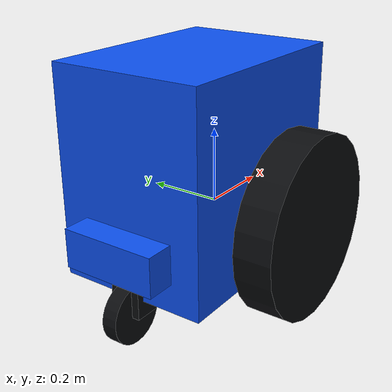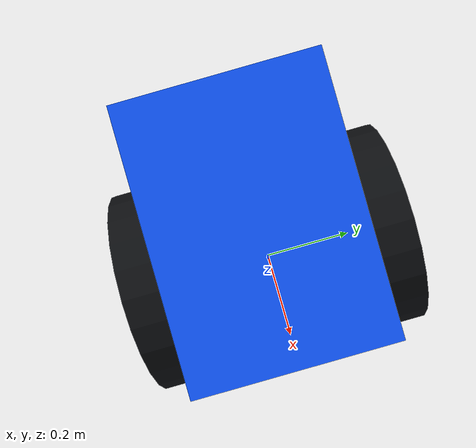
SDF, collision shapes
<sdf version='1.11'>
  <model name='carter'>
    <link name='chassis_link'>
      <inertial>
        <pose>-0.14492629558047901 0 0.1021050290754775 0 0 0</pose>
        <mass>65.97999999999999</mass>
        <inertia>
          <ixx>2.6920995721185479</ixx>
          <ixy>0.017957000000000001</ixy>
          <ixz>-0.53075965212723208</ixz>
          <iyy>2.7387809024579108</iyy>
          <iyz>1.8e-05</iyz>
          <izz>4.0109903303393626</izz>
        </inertia>
      </inertial>
      <collision name='chassis_link_collision'>
        <pose>-0.07764248 0 0.14683718000000001 0 0 0</pose>
        <geometry>
          <box>
            <size>0.55000000000000004 0.40000000000000002 0.54000000000000004</size>
          </box>
        </geometry>
      </collision>
      <collision name='chassis_link_fixed_joint_lump__com_offset_collision_1'>
        <pose>-0.29999999999999999 0 0 0 0 0</pose>
        <geometry>
          <box>
            <size>0.25 0.25 0.10000000000000001</size>
          </box>
        </geometry>
      </collision>
      <visual name='chassis_link_visual'>
        <pose>0 0 0 0 0 0</pose>
        <geometry>
          <mesh>
            <scale>1 1 1</scale>
            <uri>model://carter_description/meshes/chassis.obj</uri>
          </mesh>
        </geometry>
        <material>
          <ambient>0.04 0.24 0.80 1</ambient>
          <diffuse>0.05 0.32 0.95 1</diffuse>
          <specular>0.30 0.30 0.35 1</specular>
        </material>
      </visual>
      <visual name='white_upper_cover'>
        <pose>0.015 0 0.275 0 0 0</pose>
        <geometry>
          <box><size>0.30 0.31 0.10</size></box>
        </geometry>
        <material>
          <ambient>0.92 0.94 0.98 1</ambient>
          <diffuse>0.98 0.99 1.00 1</diffuse>
        </material>
      </visual>
      <sensor name="imu" type="imu">
        <pose>0 0 0.30 0 0 0</pose>
        <always_on>true</always_on>
        <update_rate>100</update_rate>
      </sensor>
      <sensor name="lidar" type="gpu_lidar">
        <pose>0.12 0 0.48 0 0 0</pose>
        <always_on>true</always_on>
        <update_rate>10</update_rate>
        <visualize>true</visualize>
        <lidar>
          <scan>
            <horizontal>
              <samples>720</samples>
              <resolution>1</resolution>
              <min_angle>-3.14159265</min_angle>
              <max_angle>3.14159265</max_angle>
            </horizontal>
          </scan>
          <range>
            <min>0.12</min>
            <max>25.0</max>
            <resolution>0.02</resolution>
          </range>
        </lidar>
      </sensor>
    </link>
    <joint name='left_wheel' type='revolute'>
      <pose relative_to='chassis_link'>0 0.31420516999999998 0 0 0 0</pose>
      <parent>chassis_link</parent>
      <child>left_wheel_link</child>
      <axis>
        <xyz>0 1 0</xyz>
        <limit>
          <lower>-inf</lower>
          <upper>inf</upper>
        </limit>
        <dynamics>
          <spring_reference>0</spring_reference>
          <spring_stiffness>0</spring_stiffness>
        </dynamics>
      </axis>
    </joint>
    <link name='left_wheel_link'>
      <pose relative_to='left_wheel'>0 0 0 0 0 0</pose>
      <inertial>
        <pose>0 -0.050000000000000003 0 0 0 0</pose>
        <mass>4.195729</mass>
        <inertia>
          <ixx>0.06368</ixx>
          <ixy>0</ixy>
          <ixz>0</ixz>
          <iyy>0.12141</iyy>
          <iyz>0</iyz>
          <izz>0.06368</izz>
        </inertia>
      </inertial>
      <collision name='left_wheel_link_collision'>
        <pose>0 -0.050000000000000003 0 1.570796326794897 -1.5707963267948966 0</pose>
        <geometry>
          <cylinder>
            <length>0.10000000000000001</length>
            <radius>0.23999999999999999</radius>
          </cylinder>
        </geometry>
      </collision>
      <visual name='left_wheel_link_visual'>
        <pose>0 0 0 1.570796326794897 -1.5707963267948966 0</pose>
        <geometry>
          <mesh>
            <scale>1 1 1</scale>
            <uri>model://carter_description/meshes/side_wheel.obj</uri>
          </mesh>
        </geometry>
        <material>
          <ambient>0.025 0.03 0.04 1</ambient>
          <diffuse>0.045 0.05 0.06 1</diffuse>
        </material>
      </visual>
    </link>
    <joint name='rear_pivot' type='revolute'>
      <pose relative_to='chassis_link'>-0.31613606999999999 0 -0.075800000000000006 0 0 0</pose>
      <parent>chassis_link</parent>
      <child>rear_pivot_link</child>
      <axis>
        <xyz>0 0 1</xyz>
        <limit>
          <lower>-inf</lower>
          <upper>inf</upper>
        </limit>
        <dynamics>
          <spring_reference>0</spring_reference>
          <spring_stiffness>0</spring_stiffness>
        </dynamics>
      </axis>
    </joint>
    <link name='rear_pivot_link'>
      <pose relative_to='rear_pivot'>0 0 0 0 0 0</pose>
      <inertial>
        <pose>-0.01 0 -0.029999999999999999 0 0 0</pose>
        <mass>0.57951900000000001</mass>
        <inertia>
          <ixx>0.001361</ixx>
          <ixy>-3.0000000000000001e-06</ixy>
          <ixz>0.00034699999999999998</ixz>
          <iyy>0.0012869999999999999</iyy>
          <iyz>-1.0000000000000001e-05</iyz>
          <izz>0.00063199999999999997</izz>
        </inertia>
      </inertial>
      <collision name='rear_pivot_link_collision'>
        <pose>-0.01 0 -0.029999999999999999 0 0 0</pose>
        <geometry>
          <box>
            <size>0.089999999999999997 0.080000000000000002 0.12</size>
          </box>
        </geometry>
      </collision>
      <visual name='rear_pivot_link_visual'>
        <pose>-0.038096949999999997 0 -0.087999999999999995 -1.57057 0 0</pose>
        <geometry>
          <mesh>
            <scale>1 1 1</scale>
            <uri>model://carter_description/meshes/pivot.obj</uri>
          </mesh>
        </geometry>
        <material>
          <ambient>0.025 0.03 0.04 1</ambient>
          <diffuse>0.045 0.05 0.06 1</diffuse>
        </material>
      </visual>
    </link>
    <joint name='rear_axle' type='revolute'>
      <pose relative_to='rear_pivot_link'>-0.038096949999999997 0 -0.089610220000000004 0 0 0</pose>
      <parent>rear_pivot_link</parent>
      <child>rear_wheel_link</child>
      <axis>
        <xyz>0 1 0</xyz>
        <limit>
          <lower>-inf</lower>
          <upper>inf</upper>
        </limit>
        <dynamics>
          <spring_reference>0</spring_reference>
          <spring_stiffness>0</spring_stiffness>
        </dynamics>
      </axis>
    </joint>
    <link name='rear_wheel_link'>
      <pose relative_to='rear_axle'>0 0 0 0 0 0</pose>
      <inertial>
        <pose>0 0 0 1.57057 0 0</pose>
        <mass>1.25</mass>
        <inertia>
          <ixx>0.028879999999999999</ixx>
          <ixy>0</ixy>
          <ixz>0</ixz>
          <iyy>0.028879999999999999</iyy>
          <iyz>0</iyz>
          <izz>0.028879999999999999</izz>
        </inertia>
      </inertial>
      <collision name='rear_wheel_link_collision'>
        <pose>0 0 0 1.57057 0 0</pose>
        <geometry>
          <cylinder>
            <length>0.040000000000000001</length>
            <radius>0.075999999999999998</radius>
          </cylinder>
        </geometry>
      </collision>
      <visual name='rear_wheel_link_visual'>
        <pose>0 0 0 1.57057 0 0</pose>
        <geometry>
          <mesh>
            <scale>1 1 1</scale>
            <uri>model://carter_description/meshes/caster_wheel.obj</uri>
          </mesh>
        </geometry>
        <material>
          <ambient>0.025 0.03 0.04 1</ambient>
          <diffuse>0.045 0.05 0.06 1</diffuse>
        </material>
      </visual>
    </link>
    <joint name='right_wheel' type='revolute'>
      <pose relative_to='chassis_link'>0 -0.31420516999999998 0 0 0 0</pose>
      <parent>chassis_link</parent>
      <child>right_wheel_link</child>
      <axis>
        <xyz>0 1 0</xyz>
        <limit>
          <lower>-inf</lower>
          <upper>inf</upper>
        </limit>
        <dynamics>
          <spring_reference>0</spring_reference>
          <spring_stiffness>0</spring_stiffness>
        </dynamics>
      </axis>
    </joint>
    <link name='right_wheel_link'>
      <pose relative_to='right_wheel'>0 0 0 0 0 0</pose>
      <inertial>
        <pose>0 0.050000000000000003 0 0 0 0</pose>
        <mass>4.195729</mass>
        <inertia>
          <ixx>0.06368</ixx>
          <ixy>0</ixy>
          <ixz>0</ixz>
          <iyy>0.12141</iyy>
          <iyz>0</iyz>
          <izz>0.06368</izz>
        </inertia>
      </inertial>
      <collision name='right_wheel_link_collision'>
        <pose>0 0.050000000000000003 0 -1.570796326794897 -1.5707963267948966 0</pose>
        <geometry>
          <cylinder>
            <length>0.10000000000000001</length>
            <radius>0.23999999999999999</radius>
          </cylinder>
        </geometry>
      </collision>
      <visual name='right_wheel_link_visual'>
        <pose>0 0 0 -1.570796326794897 -1.5707963267948966 0</pose>
        <geometry>
          <mesh>
            <scale>1 1 1</scale>
            <uri>model://carter_description/meshes/side_wheel.obj</uri>
          </mesh>
        </geometry>
        <material>
          <ambient>0.025 0.03 0.04 1</ambient>
          <diffuse>0.045 0.05 0.06 1</diffuse>
        </material>
      </visual>
    </link>
    <frame name='com_joint' attached_to='chassis_link'>
      <pose>-0.29999999999999999 0 0 0 0 0</pose>
    </frame>
    <frame name='com_offset' attached_to='com_joint'>
      <pose>0 0 0 0 0 0</pose>
    </frame>
    <frame name='imu_joint' attached_to='chassis_link'>
      <pose>0 0 0 0 0 0</pose>
    </frame>
    <frame name='imu' attached_to='imu_joint'>
      <pose>0 0 0 0 0 0</pose>
    </frame>
    <plugin filename="gz-sim-diff-drive-system"
            name="gz::sim::systems::DiffDrive">
      <left_joint>left_wheel</left_joint>
      <right_joint>right_wheel</right_joint>
      <wheel_separation>0.62841034</wheel_separation>
      <wheel_radius>0.24</wheel_radius>
      <odom_publish_frequency>30</odom_publish_frequency>
      <frame_id>odom</frame_id>
      <child_frame_id>base_link</child_frame_id>
      <max_linear_acceleration>0.8</max_linear_acceleration>
      <max_angular_acceleration>1.5</max_angular_acceleration>
    </plugin>
    <plugin filename="gz-sim-joint-state-publisher-system"
            name="gz::sim::systems::JointStatePublisher">
      <joint_name>left_wheel</joint_name>
      <joint_name>right_wheel</joint_name>
      <joint_name>rear_pivot</joint_name>
      <joint_name>rear_axle</joint_name>
    </plugin>
  </model>
</sdf>
